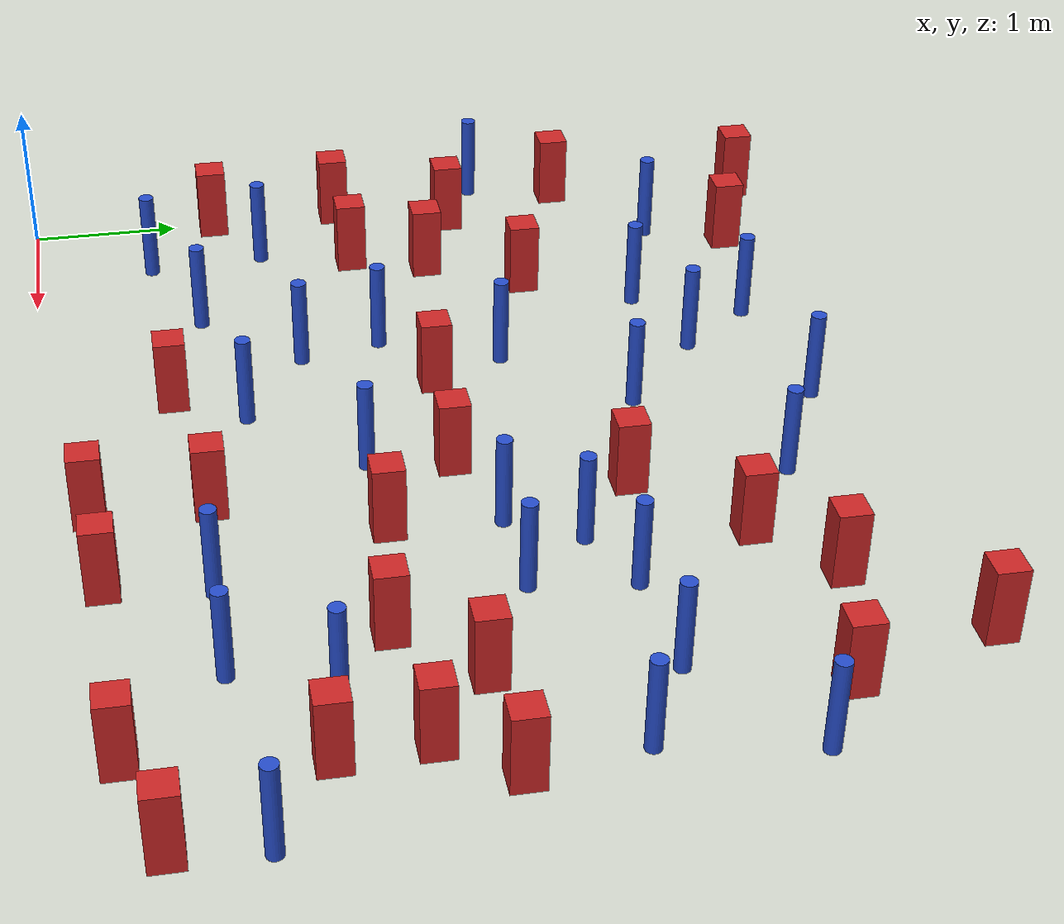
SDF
<sdf version="1.6">
 <model name="dense_17">
  <model name="pole_obstacle3">
   <static>true</static>
   <pose>6.40580370564 1.11894552427 -9.47619616065e-06 5.49618799738e-07 2.36310414071e-07 -1.55090534796e-07</pose>
   <link name="link">
    <pose>0 0 0.3 0 -0 0</pose>
    <inertial>
     <mass>1</mass>
     <inertia><ixx>0.145833</ixx><ixy>0</ixy><ixz>0</ixz><iyy>0.145833</iyy><iyz>0</iyz><izz>0.125</izz></inertia>
    </inertial>
    <collision name="collision">
     <geometry><cylinder><radius>0.05</radius><length>.6</length></cylinder></geometry>
    </collision>
    <visual name="visual">
     <geometry><cylinder><radius>0.05</radius><length>.6</length></cylinder></geometry>
     <material>
      <script><name>Gazebo/Blue</name><uri>file://media/materials/scripts/gazebo.material</uri></script>
     </material>
    </visual>
   </link>
  </model>
  <model name="square_post_obstacle6">
   <static>true</static>
   <pose>0.12175120665 5.21312354501 -6.11067671241e-07 -5.50515727128e-06 -8.79689657224e-07 2.37013304536e-05</pose>
   <link name="link">
    <pose>0 0 0.25 0 -0 0</pose>
    <inertial>
     <mass>100</mass>
     <inertia>
      <ixx>0.166667</ixx>
      <ixy>0</ixy>
      <ixz>0</ixz>
      <iyy>0.166667</iyy>
      <iyz>0</iyz>
      <izz>0.166667</izz>
     </inertia>
    </inertial>
    <collision name="collision"><geometry><box><size>.2 .2 .5</size></box></geometry></collision>
    <visual name="visual">
     <geometry><box><size>.2 .2 .5</size></box></geometry>
     <material>
      <script><name>Gazebo/Red</name><uri>file://media/materials/scripts/gazebo.material</uri></script>
     </material>
    </visual>
   </link>
  </model>
  <model name="square_post_obstacle9">
   <static>true</static>
   <pose>3.55538210605 1.01613566301 -6.11067671241e-07 -5.50515727128e-06 -8.79689657224e-07 2.37013304536e-05</pose>
   <link name="link">
    <pose>0 0 0.25 0 -0 0</pose>
    <inertial>
     <mass>100</mass>
     <inertia>
      <ixx>0.166667</ixx>
      <ixy>0</ixy>
      <ixz>0</ixz>
      <iyy>0.166667</iyy>
      <iyz>0</iyz>
      <izz>0.166667</izz>
     </inertia>
    </inertial>
    <collision name="collision"><geometry><box><size>.2 .2 .5</size></box></geometry></collision>
    <visual name="visual">
     <geometry><box><size>.2 .2 .5</size></box></geometry>
     <material>
      <script><name>Gazebo/Red</name><uri>file://media/materials/scripts/gazebo.material</uri></script>
     </material>
    </visual>
   </link>
  </model>
  <model name="square_post_obstacle15">
   <static>true</static>
   <pose>3.71951136214 3.53396822904 -6.11067671241e-07 -5.50515727128e-06 -8.79689657224e-07 2.37013304536e-05</pose>
   <link name="link">
    <pose>0 0 0.25 0 -0 0</pose>
    <inertial>
     <mass>100</mass>
     <inertia>
      <ixx>0.166667</ixx>
      <ixy>0</ixy>
      <ixz>0</ixz>
      <iyy>0.166667</iyy>
      <iyz>0</iyz>
      <izz>0.166667</izz>
     </inertia>
    </inertial>
    <collision name="collision"><geometry><box><size>.2 .2 .5</size></box></geometry></collision>
    <visual name="visual">
     <geometry><box><size>.2 .2 .5</size></box></geometry>
     <material>
      <script><name>Gazebo/Red</name><uri>file://media/materials/scripts/gazebo.material</uri></script>
     </material>
    </visual>
   </link>
  </model>
  <model name="pole_obstacle12">
   <static>true</static>
   <pose>0.657242234595 4.40116900106 -9.47619616065e-06 5.49618799737e-07 2.36310414065e-07 -1.55090534796e-07</pose>
   <link name="link">
    <pose>0 0 0.3 0 -0 0</pose>
    <inertial>
     <mass>1</mass>
     <inertia><ixx>0.145833</ixx><ixy>0</ixy><ixz>0</ixz><iyy>0.145833</iyy><iyz>0</iyz><izz>0.125</izz></inertia>
    </inertial>
    <collision name="collision">
     <geometry><cylinder><radius>0.05</radius><length>.6</length></cylinder></geometry>
    </collision>
    <visual name="visual">
     <geometry><cylinder><radius>0.05</radius><length>.6</length></cylinder></geometry>
     <material>
      <script><name>Gazebo/Blue</name><uri>file://media/materials/scripts/gazebo.material</uri></script>
     </material>
    </visual>
   </link>
  </model>
  <model name="square_post_obstacle23">
   <static>true</static>
   <pose>3.52569320102 0.297685927197 -6.11067671241e-07 -5.50515727128e-06 -8.79689657224e-07 2.37013304536e-05</pose>
   <link name="link">
    <pose>0 0 0.25 0 -0 0</pose>
    <inertial>
     <mass>100</mass>
     <inertia>
      <ixx>0.166667</ixx>
      <ixy>0</ixy>
      <ixz>0</ixz>
      <iyy>0.166667</iyy>
      <iyz>0</iyz>
      <izz>0.166667</izz>
     </inertia>
    </inertial>
    <collision name="collision"><geometry><box><size>.2 .2 .5</size></box></geometry></collision>
    <visual name="visual">
     <geometry><box><size>.2 .2 .5</size></box></geometry>
     <material>
      <script><name>Gazebo/Red</name><uri>file://media/materials/scripts/gazebo.material</uri></script>
     </material>
    </visual>
   </link>
  </model>
  <model name="square_post_obstacle26">
   <static>true</static>
   <pose>4.23867038706 0.354089430729 -6.11067671241e-07 -5.50515727128e-06 -8.79689657224e-07 2.37013304536e-05</pose>
   <link name="link">
    <pose>0 0 0.25 0 -0 0</pose>
    <inertial>
     <mass>100</mass>
     <inertia>
      <ixx>0.166667</ixx>
      <ixy>0</ixy>
      <ixz>0</ixz>
      <iyy>0.166667</iyy>
      <iyz>0</iyz>
      <izz>0.166667</izz>
     </inertia>
    </inertial>
    <collision name="collision"><geometry><box><size>.2 .2 .5</size></box></geometry></collision>
    <visual name="visual">
     <geometry><box><size>.2 .2 .5</size></box></geometry>
     <material>
      <script><name>Gazebo/Red</name><uri>file://media/materials/scripts/gazebo.material</uri></script>
     </material>
    </visual>
   </link>
  </model>
  <model name="pole_obstacle21">
   <static>true</static>
   <pose>1.88008731357 4.78758069899 -9.47619616065e-06 5.49618799737e-07 2.36310414061e-07 -1.550905348e-07</pose>
   <link name="link">
    <pose>0 0 0.3 0 -0 0</pose>
    <inertial>
     <mass>1</mass>
     <inertia><ixx>0.145833</ixx><ixy>0</ixy><ixz>0</ixz><iyy>0.145833</iyy><iyz>0</iyz><izz>0.125</izz></inertia>
    </inertial>
    <collision name="collision">
     <geometry><cylinder><radius>0.05</radius><length>.6</length></cylinder></geometry>
    </collision>
    <visual name="visual">
     <geometry><cylinder><radius>0.05</radius><length>.6</length></cylinder></geometry>
     <material>
      <script><name>Gazebo/Blue</name><uri>file://media/materials/scripts/gazebo.material</uri></script>
     </material>
    </visual>
   </link>
  </model>
  <model name="pole_obstacle22">
   <static>true</static>
   <pose>2.83495884341 3.78660274356 -9.47619616065e-06 5.49618799737e-07 2.36310414051e-07 -1.55090534807e-07</pose>
   <link name="link">
    <pose>0 0 0.3 0 -0 0</pose>
    <inertial>
     <mass>1</mass>
     <inertia><ixx>0.145833</ixx><ixy>0</ixy><ixz>0</ixz><iyy>0.145833</iyy><iyz>0</iyz><izz>0.125</izz></inertia>
    </inertial>
    <collision name="collision">
     <geometry><cylinder><radius>0.05</radius><length>.6</length></cylinder></geometry>
    </collision>
    <visual name="visual">
     <geometry><cylinder><radius>0.05</radius><length>.6</length></cylinder></geometry>
     <material>
      <script><name>Gazebo/Blue</name><uri>file://media/materials/scripts/gazebo.material</uri></script>
     </material>
    </visual>
   </link>
  </model>
  <model name="pole_obstacle30">
   <static>true</static>
   <pose>2.94315081644 4.94244840659 -9.47619616065e-06 5.49618799738e-07 2.3631041406e-07 -1.55090534801e-07</pose>
   <link name="link">
    <pose>0 0 0.3 0 -0 0</pose>
    <inertial>
     <mass>1</mass>
     <inertia><ixx>0.145833</ixx><ixy>0</ixy><ixz>0</ixz><iyy>0.145833</iyy><iyz>0</iyz><izz>0.125</izz></inertia>
    </inertial>
    <collision name="collision">
     <geometry><cylinder><radius>0.05</radius><length>.6</length></cylinder></geometry>
    </collision>
    <visual name="visual">
     <geometry><cylinder><radius>0.05</radius><length>.6</length></cylinder></geometry>
     <material>
      <script><name>Gazebo/Blue</name><uri>file://media/materials/scripts/gazebo.material</uri></script>
     </material>
    </visual>
   </link>
  </model>
  <model name="square_post_obstacle40">
   <static>true</static>
   <pose>0.735723268744 2.21795602429 -6.11067671241e-07 -5.50515727128e-06 -8.79689657224e-07 2.37013304536e-05</pose>
   <link name="link">
    <pose>0 0 0.25 0 -0 0</pose>
    <inertial>
     <mass>100</mass>
     <inertia>
      <ixx>0.166667</ixx>
      <ixy>0</ixy>
      <ixz>0</ixz>
      <iyy>0.166667</iyy>
      <iyz>0</iyz>
      <izz>0.166667</izz>
     </inertia>
    </inertial>
    <collision name="collision"><geometry><box><size>.2 .2 .5</size></box></geometry></collision>
    <visual name="visual">
     <geometry><box><size>.2 .2 .5</size></box></geometry>
     <material>
      <script><name>Gazebo/Red</name><uri>file://media/materials/scripts/gazebo.material</uri></script>
     </material>
    </visual>
   </link>
  </model>
  <model name="square_post_obstacle45">
   <static>true</static>
   <pose>5.42357465775 5.20341456652 -6.11067671241e-07 -5.50515727128e-06 -8.79689657224e-07 2.37013304536e-05</pose>
   <link name="link">
    <pose>0 0 0.25 0 -0 0</pose>
    <inertial>
     <mass>100</mass>
     <inertia>
      <ixx>0.166667</ixx>
      <ixy>0</ixy>
      <ixz>0</ixz>
      <iyy>0.166667</iyy>
      <iyz>0</iyz>
      <izz>0.166667</izz>
     </inertia>
    </inertial>
    <collision name="collision"><geometry><box><size>.2 .2 .5</size></box></geometry></collision>
    <visual name="visual">
     <geometry><box><size>.2 .2 .5</size></box></geometry>
     <material>
      <script><name>Gazebo/Red</name><uri>file://media/materials/scripts/gazebo.material</uri></script>
     </material>
    </visual>
   </link>
  </model>
  <model name="pole_obstacle55">
   <static>true</static>
   <pose>4.21173743195 3.1557542884 -9.47619616065e-06 5.49618799738e-07 2.36310414051e-07 -1.55090534805e-07</pose>
   <link name="link">
    <pose>0 0 0.3 0 -0 0</pose>
    <inertial>
     <mass>1</mass>
     <inertia><ixx>0.145833</ixx><ixy>0</ixy><ixz>0</ixz><iyy>0.145833</iyy><iyz>0</iyz><izz>0.125</izz></inertia>
    </inertial>
    <collision name="collision">
     <geometry><cylinder><radius>0.05</radius><length>.6</length></cylinder></geometry>
    </collision>
    <visual name="visual">
     <geometry><cylinder><radius>0.05</radius><length>.6</length></cylinder></geometry>
     <material>
      <script><name>Gazebo/Blue</name><uri>file://media/materials/scripts/gazebo.material</uri></script>
     </material>
    </visual>
   </link>
  </model>
  <model name="square_post_obstacle69">
   <static>true</static>
   <pose>0.268329556664 2.98880078036 -6.11067671241e-07 -5.50515727128e-06 -8.79689657224e-07 2.37013304536e-05</pose>
   <link name="link">
    <pose>0 0 0.25 0 -0 0</pose>
    <inertial>
     <mass>100</mass>
     <inertia>
      <ixx>0.166667</ixx>
      <ixy>0</ixy>
      <ixz>0</ixz>
      <iyy>0.166667</iyy>
      <iyz>0</iyz>
      <izz>0.166667</izz>
     </inertia>
    </inertial>
    <collision name="collision"><geometry><box><size>.2 .2 .5</size></box></geometry></collision>
    <visual name="visual">
     <geometry><box><size>.2 .2 .5</size></box></geometry>
     <material>
      <script><name>Gazebo/Red</name><uri>file://media/materials/scripts/gazebo.material</uri></script>
     </material>
    </visual>
   </link>
  </model>
  <model name="pole_obstacle69">
   <static>true</static>
   <pose>1.9808595066 1.73114212857 -9.47619616065e-06 5.49618799737e-07 2.36310414028e-07 -1.5509053482e-07</pose>
   <link name="link">
    <pose>0 0 0.3 0 -0 0</pose>
    <inertial>
     <mass>1</mass>
     <inertia><ixx>0.145833</ixx><ixy>0</ixy><ixz>0</ixz><iyy>0.145833</iyy><iyz>0</iyz><izz>0.125</izz></inertia>
    </inertial>
    <collision name="collision">
     <geometry><cylinder><radius>0.05</radius><length>.6</length></cylinder></geometry>
    </collision>
    <visual name="visual">
     <geometry><cylinder><radius>0.05</radius><length>.6</length></cylinder></geometry>
     <material>
      <script><name>Gazebo/Blue</name><uri>file://media/materials/scripts/gazebo.material</uri></script>
     </material>
    </visual>
   </link>
  </model>
  <model name="square_post_obstacle76">
   <static>true</static>
   <pose>3.93827418173 2.02833875753 -6.11067671241e-07 -5.50515727128e-06 -8.79689657224e-07 2.37013304536e-05</pose>
   <link name="link">
    <pose>0 0 0.25 0 -0 0</pose>
    <inertial>
     <mass>100</mass>
     <inertia>
      <ixx>0.166667</ixx>
      <ixy>0</ixy>
      <ixz>0</ixz>
      <iyy>0.166667</iyy>
      <iyz>0</iyz>
      <izz>0.166667</izz>
     </inertia>
    </inertial>
    <collision name="collision"><geometry><box><size>.2 .2 .5</size></box></geometry></collision>
    <visual name="visual">
     <geometry><box><size>.2 .2 .5</size></box></geometry>
     <material>
      <script><name>Gazebo/Red</name><uri>file://media/materials/scripts/gazebo.material</uri></script>
     </material>
    </visual>
   </link>
  </model>
  <model name="pole_obstacle72">
   <static>true</static>
   <pose>2.62070857502 1.31318737938 -9.47619616065e-06 5.49618799737e-07 2.36310414072e-07 -1.55090534793e-07</pose>
   <link name="link">
    <pose>0 0 0.3 0 -0 0</pose>
    <inertial>
     <mass>1</mass>
     <inertia><ixx>0.145833</ixx><ixy>0</ixy><ixz>0</ixz><iyy>0.145833</iyy><iyz>0</iyz><izz>0.125</izz></inertia>
    </inertial>
    <collision name="collision">
     <geometry><cylinder><radius>0.05</radius><length>.6</length></cylinder></geometry>
    </collision>
    <visual name="visual">
     <geometry><cylinder><radius>0.05</radius><length>.6</length></cylinder></geometry>
     <material>
      <script><name>Gazebo/Blue</name><uri>file://media/materials/scripts/gazebo.material</uri></script>
     </material>
    </visual>
   </link>
  </model>
  <model name="pole_obstacle74">
   <static>true</static>
   <pose>5.07295200999 0.983745637312 -9.47619616065e-06 5.49618799737e-07 2.36310414073e-07 -1.55090534792e-07</pose>
   <link name="link">
    <pose>0 0 0.3 0 -0 0</pose>
    <inertial>
     <mass>1</mass>
     <inertia><ixx>0.145833</ixx><ixy>0</ixy><ixz>0</ixz><iyy>0.145833</iyy><iyz>0</iyz><izz>0.125</izz></inertia>
    </inertial>
    <collision name="collision">
     <geometry><cylinder><radius>0.05</radius><length>.6</length></cylinder></geometry>
    </collision>
    <visual name="visual">
     <geometry><cylinder><radius>0.05</radius><length>.6</length></cylinder></geometry>
     <material>
      <script><name>Gazebo/Blue</name><uri>file://media/materials/scripts/gazebo.material</uri></script>
     </material>
    </visual>
   </link>
  </model>
  <model name="pole_obstacle77">
   <static>true</static>
   <pose>1.5898215497 4.08103817789 -9.47619616065e-06 5.49618799737e-07 2.36310414061e-07 -1.550905348e-07</pose>
   <link name="link">
    <pose>0 0 0.3 0 -0 0</pose>
    <inertial>
     <mass>1</mass>
     <inertia><ixx>0.145833</ixx><ixy>0</ixy><ixz>0</ixz><iyy>0.145833</iyy><iyz>0</iyz><izz>0.125</izz></inertia>
    </inertial>
    <collision name="collision">
     <geometry><cylinder><radius>0.05</radius><length>.6</length></cylinder></geometry>
    </collision>
    <visual name="visual">
     <geometry><cylinder><radius>0.05</radius><length>.6</length></cylinder></geometry>
     <material>
      <script><name>Gazebo/Blue</name><uri>file://media/materials/scripts/gazebo.material</uri></script>
     </material>
    </visual>
   </link>
  </model>
  <model name="pole_obstacle78">
   <static>true</static>
   <pose>0.627670581367 0.809541458154 -9.47619616065e-06 5.49618799737e-07 2.36310414058e-07 -1.55090534802e-07</pose>
   <link name="link">
    <pose>0 0 0.3 0 -0 0</pose>
    <inertial>
     <mass>1</mass>
     <inertia><ixx>0.145833</ixx><ixy>0</ixy><ixz>0</ixz><iyy>0.145833</iyy><iyz>0</iyz><izz>0.125</izz></inertia>
    </inertial>
    <collision name="collision">
     <geometry><cylinder><radius>0.05</radius><length>.6</length></cylinder></geometry>
    </collision>
    <visual name="visual">
     <geometry><cylinder><radius>0.05</radius><length>.6</length></cylinder></geometry>
     <material>
      <script><name>Gazebo/Blue</name><uri>file://media/materials/scripts/gazebo.material</uri></script>
     </material>
    </visual>
   </link>
  </model>
  <model name="pole_obstacle86">
   <static>true</static>
   <pose>5.41553206695 3.42175717961 -9.47619616065e-06 5.49618799738e-07 2.36310414051e-07 -1.55090534805e-07</pose>
   <link name="link">
    <pose>0 0 0.3 0 -0 0</pose>
    <inertial>
     <mass>1</mass>
     <inertia><ixx>0.145833</ixx><ixy>0</ixy><ixz>0</ixz><iyy>0.145833</iyy><iyz>0</iyz><izz>0.125</izz></inertia>
    </inertial>
    <collision name="collision">
     <geometry><cylinder><radius>0.05</radius><length>.6</length></cylinder></geometry>
    </collision>
    <visual name="visual">
     <geometry><cylinder><radius>0.05</radius><length>.6</length></cylinder></geometry>
     <material>
      <script><name>Gazebo/Blue</name><uri>file://media/materials/scripts/gazebo.material</uri></script>
     </material>
    </visual>
   </link>
  </model>
  <model name="square_post_obstacle82">
   <static>true</static>
   <pose>5.3345197611 2.37565667691 -6.11067671241e-07 -5.50515727128e-06 -8.79689657224e-07 2.37013304536e-05</pose>
   <link name="link">
    <pose>0 0 0.25 0 -0 0</pose>
    <inertial>
     <mass>100</mass>
     <inertia>
      <ixx>0.166667</ixx>
      <ixy>0</ixy>
      <ixz>0</ixz>
      <iyy>0.166667</iyy>
      <iyz>0</iyz>
      <izz>0.166667</izz>
     </inertia>
    </inertial>
    <collision name="collision"><geometry><box><size>.2 .2 .5</size></box></geometry></collision>
    <visual name="visual">
     <geometry><box><size>.2 .2 .5</size></box></geometry>
     <material>
      <script><name>Gazebo/Red</name><uri>file://media/materials/scripts/gazebo.material</uri></script>
     </material>
    </visual>
   </link>
  </model>
  <model name="pole_obstacle95">
   <static>true</static>
   <pose>2.18825418097 3.03562841617 -9.47619616065e-06 5.49618799737e-07 2.36310414051e-07 -1.55090534807e-07</pose>
   <link name="link">
    <pose>0 0 0.3 0 -0 0</pose>
    <inertial>
     <mass>1</mass>
     <inertia><ixx>0.145833</ixx><ixy>0</ixy><ixz>0</ixz><iyy>0.145833</iyy><iyz>0</iyz><izz>0.125</izz></inertia>
    </inertial>
    <collision name="collision">
     <geometry><cylinder><radius>0.05</radius><length>.6</length></cylinder></geometry>
    </collision>
    <visual name="visual">
     <geometry><cylinder><radius>0.05</radius><length>.6</length></cylinder></geometry>
     <material>
      <script><name>Gazebo/Blue</name><uri>file://media/materials/scripts/gazebo.material</uri></script>
     </material>
    </visual>
   </link>
  </model>
  <model name="square_post_obstacle84">
   <static>true</static>
   <pose>3.34300244757 2.51594749155 -6.11067671241e-07 -5.50515727128e-06 -8.79689657224e-07 2.37013304536e-05</pose>
   <link name="link">
    <pose>0 0 0.25 0 -0 0</pose>
    <inertial>
     <mass>100</mass>
     <inertia>
      <ixx>0.166667</ixx>
      <ixy>0</ixy>
      <ixz>0</ixz>
      <iyy>0.166667</iyy>
      <iyz>0</iyz>
      <izz>0.166667</izz>
     </inertia>
    </inertial>
    <collision name="collision"><geometry><box><size>.2 .2 .5</size></box></geometry></collision>
    <visual name="visual">
     <geometry><box><size>.2 .2 .5</size></box></geometry>
     <material>
      <script><name>Gazebo/Red</name><uri>file://media/materials/scripts/gazebo.material</uri></script>
     </material>
    </visual>
   </link>
  </model>
  <model name="pole_obstacle97">
   <static>true</static>
   <pose>4.34868274485 0.977010980778 -9.47619616065e-06 5.49618799737e-07 2.36310414073e-07 -1.55090534792e-07</pose>
   <link name="link">
    <pose>0 0 0.3 0 -0 0</pose>
    <inertial>
     <mass>1</mass>
     <inertia><ixx>0.145833</ixx><ixy>0</ixy><ixz>0</ixz><iyy>0.145833</iyy><iyz>0</iyz><izz>0.125</izz></inertia>
    </inertial>
    <collision name="collision">
     <geometry><cylinder><radius>0.05</radius><length>.6</length></cylinder></geometry>
    </collision>
    <visual name="visual">
     <geometry><cylinder><radius>0.05</radius><length>.6</length></cylinder></geometry>
     <material>
      <script><name>Gazebo/Blue</name><uri>file://media/materials/scripts/gazebo.material</uri></script>
     </material>
    </visual>
   </link>
  </model>
  <model name="square_post_obstacle94">
   <static>true</static>
   <pose>-0.0245551724282 3.83456139236 -6.11067671241e-07 -5.50515727128e-06 -8.79689657224e-07 2.37013304536e-05</pose>
   <link name="link">
    <pose>0 0 0.25 0 -0 0</pose>
    <inertial>
     <mass>100</mass>
     <inertia>
      <ixx>0.166667</ixx>
      <ixy>0</ixy>
      <ixz>0</ixz>
      <iyy>0.166667</iyy>
      <iyz>0</iyz>
      <izz>0.166667</izz>
     </inertia>
    </inertial>
    <collision name="collision"><geometry><box><size>.2 .2 .5</size></box></geometry></collision>
    <visual name="visual">
     <geometry><box><size>.2 .2 .5</size></box></geometry>
     <material>
      <script><name>Gazebo/Red</name><uri>file://media/materials/scripts/gazebo.material</uri></script>
     </material>
    </visual>
   </link>
  </model>
  <model name="pole_obstacle110">
   <static>true</static>
   <pose>0.562469756048 1.58860979636 -9.47619616065e-06 5.49618799738e-07 2.36310414061e-07 -1.55090534801e-07</pose>
   <link name="link">
    <pose>0 0 0.3 0 -0 0</pose>
    <inertial>
     <mass>1</mass>
     <inertia><ixx>0.145833</ixx><ixy>0</ixy><ixz>0</ixz><iyy>0.145833</iyy><iyz>0</iyz><izz>0.125</izz></inertia>
    </inertial>
    <collision name="collision">
     <geometry><cylinder><radius>0.05</radius><length>.6</length></cylinder></geometry>
    </collision>
    <visual name="visual">
     <geometry><cylinder><radius>0.05</radius><length>.6</length></cylinder></geometry>
     <material>
      <script><name>Gazebo/Blue</name><uri>file://media/materials/scripts/gazebo.material</uri></script>
     </material>
    </visual>
   </link>
  </model>
  <model name="pole_obstacle113">
   <static>true</static>
   <pose>2.23481605324 4.3113399485 -9.47619616065e-06 5.49618799738e-07 2.3631041406e-07 -1.55090534801e-07</pose>
   <link name="link">
    <pose>0 0 0.3 0 -0 0</pose>
    <inertial>
     <mass>1</mass>
     <inertia><ixx>0.145833</ixx><ixy>0</ixy><ixz>0</ixz><iyy>0.145833</iyy><iyz>0</iyz><izz>0.125</izz></inertia>
    </inertial>
    <collision name="collision">
     <geometry><cylinder><radius>0.05</radius><length>.6</length></cylinder></geometry>
    </collision>
    <visual name="visual">
     <geometry><cylinder><radius>0.05</radius><length>.6</length></cylinder></geometry>
     <material>
      <script><name>Gazebo/Blue</name><uri>file://media/materials/scripts/gazebo.material</uri></script>
     </material>
    </visual>
   </link>
  </model>
  <model name="pole_obstacle121">
   <static>true</static>
   <pose>6.16025132692 4.0187862755 -9.47619616065e-06 5.49618799738e-07 2.36310414038e-07 -1.55090534813e-07</pose>
   <link name="link">
    <pose>0 0 0.3 0 -0 0</pose>
    <inertial>
     <mass>1</mass>
     <inertia><ixx>0.145833</ixx><ixy>0</ixy><ixz>0</ixz><iyy>0.145833</iyy><iyz>0</iyz><izz>0.125</izz></inertia>
    </inertial>
    <collision name="collision">
     <geometry><cylinder><radius>0.05</radius><length>.6</length></cylinder></geometry>
    </collision>
    <visual name="visual">
     <geometry><cylinder><radius>0.05</radius><length>.6</length></cylinder></geometry>
     <material>
      <script><name>Gazebo/Blue</name><uri>file://media/materials/scripts/gazebo.material</uri></script>
     </material>
    </visual>
   </link>
  </model>
  <model name="pole_obstacle122">
   <static>true</static>
   <pose>5.31365486598 1.57367265441 -9.47619616065e-06 5.49618799738e-07 2.36310414071e-07 -1.55090534796e-07</pose>
   <link name="link">
    <pose>0 0 0.3 0 -0 0</pose>
    <inertial>
     <mass>1</mass>
     <inertia><ixx>0.145833</ixx><ixy>0</ixy><ixz>0</ixz><iyy>0.145833</iyy><iyz>0</iyz><izz>0.125</izz></inertia>
    </inertial>
    <collision name="collision">
     <geometry><cylinder><radius>0.05</radius><length>.6</length></cylinder></geometry>
    </collision>
    <visual name="visual">
     <geometry><cylinder><radius>0.05</radius><length>.6</length></cylinder></geometry>
     <material>
      <script><name>Gazebo/Blue</name><uri>file://media/materials/scripts/gazebo.material</uri></script>
     </material>
    </visual>
   </link>
  </model>
  <model name="pole_obstacle131">
   <static>true</static>
   <pose>3.96403284781 2.71536105877 -9.47619616065e-06 5.49618799737e-07 2.36310414035e-07 -1.55090534817e-07</pose>
   <link name="link">
    <pose>0 0 0.3 0 -0 0</pose>
    <inertial>
     <mass>1</mass>
     <inertia><ixx>0.145833</ixx><ixy>0</ixy><ixz>0</ixz><iyy>0.145833</iyy><iyz>0</iyz><izz>0.125</izz></inertia>
    </inertial>
    <collision name="collision">
     <geometry><cylinder><radius>0.05</radius><length>.6</length></cylinder></geometry>
    </collision>
    <visual name="visual">
     <geometry><cylinder><radius>0.05</radius><length>.6</length></cylinder></geometry>
     <material>
      <script><name>Gazebo/Blue</name><uri>file://media/materials/scripts/gazebo.material</uri></script>
     </material>
    </visual>
   </link>
  </model>
  <model name="square_post_obstacle121">
   <static>true</static>
   <pose>2.35432972787 0.859238940003 -6.11067671241e-07 -5.50515727128e-06 -8.79689657224e-07 2.37013304536e-05</pose>
   <link name="link">
    <pose>0 0 0.25 0 -0 0</pose>
    <inertial>
     <mass>100</mass>
     <inertia>
      <ixx>0.166667</ixx>
      <ixy>0</ixy>
      <ixz>0</ixz>
      <iyy>0.166667</iyy>
      <iyz>0</iyz>
      <izz>0.166667</izz>
     </inertia>
    </inertial>
    <collision name="collision"><geometry><box><size>.2 .2 .5</size></box></geometry></collision>
    <visual name="visual">
     <geometry><box><size>.2 .2 .5</size></box></geometry>
     <material>
      <script><name>Gazebo/Red</name><uri>file://media/materials/scripts/gazebo.material</uri></script>
     </material>
    </visual>
   </link>
  </model>
  <model name="pole_obstacle143">
   <static>true</static>
   <pose>5.99277311206 3.11308428605 -9.47619616065e-06 5.49618799738e-07 2.36310414051e-07 -1.55090534805e-07</pose>
   <link name="link">
    <pose>0 0 0.3 0 -0 0</pose>
    <inertial>
     <mass>1</mass>
     <inertia><ixx>0.145833</ixx><ixy>0</ixy><ixz>0</ixz><iyy>0.145833</iyy><iyz>0</iyz><izz>0.125</izz></inertia>
    </inertial>
    <collision name="collision">
     <geometry><cylinder><radius>0.05</radius><length>.6</length></cylinder></geometry>
    </collision>
    <visual name="visual">
     <geometry><cylinder><radius>0.05</radius><length>.6</length></cylinder></geometry>
     <material>
      <script><name>Gazebo/Blue</name><uri>file://media/materials/scripts/gazebo.material</uri></script>
     </material>
    </visual>
   </link>
  </model>
  <model name="pole_obstacle145">
   <static>true</static>
   <pose>3.73943568499 4.53620728928 -9.47619616065e-06 5.49618799738e-07 2.3631041406e-07 -1.55090534801e-07</pose>
   <link name="link">
    <pose>0 0 0.3 0 -0 0</pose>
    <inertial>
     <mass>1</mass>
     <inertia><ixx>0.145833</ixx><ixy>0</ixy><ixz>0</ixz><iyy>0.145833</iyy><iyz>0</iyz><izz>0.125</izz></inertia>
    </inertial>
    <collision name="collision">
     <geometry><cylinder><radius>0.05</radius><length>.6</length></cylinder></geometry>
    </collision>
    <visual name="visual">
     <geometry><cylinder><radius>0.05</radius><length>.6</length></cylinder></geometry>
     <material>
      <script><name>Gazebo/Blue</name><uri>file://media/materials/scripts/gazebo.material</uri></script>
     </material>
    </visual>
   </link>
  </model>
  <model name="pole_obstacle146">
   <static>true</static>
   <pose>4.59119838336 2.73745709856 -9.47619616065e-06 5.49618799738e-07 2.36310414051e-07 -1.55090534805e-07</pose>
   <link name="link">
    <pose>0 0 0.3 0 -0 0</pose>
    <inertial>
     <mass>1</mass>
     <inertia><ixx>0.145833</ixx><ixy>0</ixy><ixz>0</ixz><iyy>0.145833</iyy><iyz>0</iyz><izz>0.125</izz></inertia>
    </inertial>
    <collision name="collision">
     <geometry><cylinder><radius>0.05</radius><length>.6</length></cylinder></geometry>
    </collision>
    <visual name="visual">
     <geometry><cylinder><radius>0.05</radius><length>.6</length></cylinder></geometry>
     <material>
      <script><name>Gazebo/Blue</name><uri>file://media/materials/scripts/gazebo.material</uri></script>
     </material>
    </visual>
   </link>
  </model>
  <model name="pole_obstacle150">
   <static>true</static>
   <pose>-0.189831140969 3.2367947029 -9.47619616065e-06 5.49618799738e-07 2.36310414068e-07 -1.55090534794e-07</pose>
   <link name="link">
    <pose>0 0 0.3 0 -0 0</pose>
    <inertial>
     <mass>1</mass>
     <inertia><ixx>0.145833</ixx><ixy>0</ixy><ixz>0</ixz><iyy>0.145833</iyy><iyz>0</iyz><izz>0.125</izz></inertia>
    </inertial>
    <collision name="collision">
     <geometry><cylinder><radius>0.05</radius><length>.6</length></cylinder></geometry>
    </collision>
    <visual name="visual">
     <geometry><cylinder><radius>0.05</radius><length>.6</length></cylinder></geometry>
     <material>
      <script><name>Gazebo/Blue</name><uri>file://media/materials/scripts/gazebo.material</uri></script>
     </material>
    </visual>
   </link>
  </model>
  <model name="square_post_obstacle143">
   <static>true</static>
   <pose>1.24422720786 3.36394928118 -6.11067671241e-07 -5.50515727128e-06 -8.79689657224e-07 2.37013304536e-05</pose>
   <link name="link">
    <pose>0 0 0.25 0 -0 0</pose>
    <inertial>
     <mass>100</mass>
     <inertia>
      <ixx>0.166667</ixx>
      <ixy>0</ixy>
      <ixz>0</ixz>
      <iyy>0.166667</iyy>
      <iyz>0</iyz>
      <izz>0.166667</izz>
     </inertia>
    </inertial>
    <collision name="collision"><geometry><box><size>.2 .2 .5</size></box></geometry></collision>
    <visual name="visual">
     <geometry><box><size>.2 .2 .5</size></box></geometry>
     <material>
      <script><name>Gazebo/Red</name><uri>file://media/materials/scripts/gazebo.material</uri></script>
     </material>
    </visual>
   </link>
  </model>
  <model name="square_post_obstacle148">
   <static>true</static>
   <pose>0.0250843038498 2.17689002819 -6.11067671241e-07 -5.50515727128e-06 -8.79689657224e-07 2.37013304536e-05</pose>
   <link name="link">
    <pose>0 0 0.25 0 -0 0</pose>
    <inertial>
     <mass>100</mass>
     <inertia>
      <ixx>0.166667</ixx>
      <ixy>0</ixy>
      <ixz>0</ixz>
      <iyy>0.166667</iyy>
      <iyz>0</iyz>
      <izz>0.166667</izz>
     </inertia>
    </inertial>
    <collision name="collision"><geometry><box><size>.2 .2 .5</size></box></geometry></collision>
    <visual name="visual">
     <geometry><box><size>.2 .2 .5</size></box></geometry>
     <material>
      <script><name>Gazebo/Red</name><uri>file://media/materials/scripts/gazebo.material</uri></script>
     </material>
    </visual>
   </link>
  </model>
  <model name="pole_obstacle160">
   <static>true</static>
   <pose>3.2529697426 1.99626283243 -9.47619616065e-06 5.49618799737e-07 2.36310414056e-07 -1.55090534804e-07</pose>
   <link name="link">
    <pose>0 0 0.3 0 -0 0</pose>
    <inertial>
     <mass>1</mass>
     <inertia><ixx>0.145833</ixx><ixy>0</ixy><ixz>0</ixz><iyy>0.145833</iyy><iyz>0</iyz><izz>0.125</izz></inertia>
    </inertial>
    <collision name="collision">
     <geometry><cylinder><radius>0.05</radius><length>.6</length></cylinder></geometry>
    </collision>
    <visual name="visual">
     <geometry><cylinder><radius>0.05</radius><length>.6</length></cylinder></geometry>
     <material>
      <script><name>Gazebo/Blue</name><uri>file://media/materials/scripts/gazebo.material</uri></script>
     </material>
    </visual>
   </link>
  </model>
  <model name="square_post_obstacle157">
   <static>true</static>
   <pose>4.79609090478 4.53364795757 -6.11067671241e-07 -5.50515727128e-06 -8.79689657224e-07 2.37013304536e-05</pose>
   <link name="link">
    <pose>0 0 0.25 0 -0 0</pose>
    <inertial>
     <mass>100</mass>
     <inertia>
      <ixx>0.166667</ixx>
      <ixy>0</ixy>
      <ixz>0</ixz>
      <iyy>0.166667</iyy>
      <iyz>0</iyz>
      <izz>0.166667</izz>
     </inertia>
    </inertial>
    <collision name="collision"><geometry><box><size>.2 .2 .5</size></box></geometry></collision>
    <visual name="visual">
     <geometry><box><size>.2 .2 .5</size></box></geometry>
     <material>
      <script><name>Gazebo/Red</name><uri>file://media/materials/scripts/gazebo.material</uri></script>
     </material>
    </visual>
   </link>
  </model>
  <model name="square_post_obstacle163">
   <static>true</static>
   <pose>5.83250815881 1.4746276174 -6.11067671241e-07 -5.50515727128e-06 -8.79689657224e-07 2.37013304536e-05</pose>
   <link name="link">
    <pose>0 0 0.25 0 -0 0</pose>
    <inertial>
     <mass>100</mass>
     <inertia>
      <ixx>0.166667</ixx>
      <ixy>0</ixy>
      <ixz>0</ixz>
      <iyy>0.166667</iyy>
      <iyz>0</iyz>
      <izz>0.166667</izz>
     </inertia>
    </inertial>
    <collision name="collision"><geometry><box><size>.2 .2 .5</size></box></geometry></collision>
    <visual name="visual">
     <geometry><box><size>.2 .2 .5</size></box></geometry>
     <material>
      <script><name>Gazebo/Red</name><uri>file://media/materials/scripts/gazebo.material</uri></script>
     </material>
    </visual>
   </link>
  </model>
  <model name="pole_obstacle176">
   <static>true</static>
   <pose>1.40275080122 1.10718735346 -9.47619616065e-06 5.49618799737e-07 2.36310414065e-07 -1.55090534798e-07</pose>
   <link name="link">
    <pose>0 0 0.3 0 -0 0</pose>
    <inertial>
     <mass>1</mass>
     <inertia><ixx>0.145833</ixx><ixy>0</ixy><ixz>0</ixz><iyy>0.145833</iyy><iyz>0</iyz><izz>0.125</izz></inertia>
    </inertial>
    <collision name="collision">
     <geometry><cylinder><radius>0.05</radius><length>.6</length></cylinder></geometry>
    </collision>
    <visual name="visual">
     <geometry><cylinder><radius>0.05</radius><length>.6</length></cylinder></geometry>
     <material>
      <script><name>Gazebo/Blue</name><uri>file://media/materials/scripts/gazebo.material</uri></script>
     </material>
    </visual>
   </link>
  </model>
  <model name="pole_obstacle177">
   <static>true</static>
   <pose>4.67641214926 3.37076409259 -9.47619616065e-06 5.49618799738e-07 2.36310414051e-07 -1.55090534805e-07</pose>
   <link name="link">
    <pose>0 0 0.3 0 -0 0</pose>
    <inertial>
     <mass>1</mass>
     <inertia><ixx>0.145833</ixx><ixy>0</ixy><ixz>0</ixz><iyy>0.145833</iyy><iyz>0</iyz><izz>0.125</izz></inertia>
    </inertial>
    <collision name="collision">
     <geometry><cylinder><radius>0.05</radius><length>.6</length></cylinder></geometry>
    </collision>
    <visual name="visual">
     <geometry><cylinder><radius>0.05</radius><length>.6</length></cylinder></geometry>
     <material>
      <script><name>Gazebo/Blue</name><uri>file://media/materials/scripts/gazebo.material</uri></script>
     </material>
    </visual>
   </link>
  </model>
  <model name="pole_obstacle179">
   <static>true</static>
   <pose>1.8567749019 2.26457654373 -9.47619616065e-06 5.49618799737e-07 2.36310414062e-07 -1.55090534798e-07</pose>
   <link name="link">
    <pose>0 0 0.3 0 -0 0</pose>
    <inertial>
     <mass>1</mass>
     <inertia><ixx>0.145833</ixx><ixy>0</ixy><ixz>0</ixz><iyy>0.145833</iyy><iyz>0</iyz><izz>0.125</izz></inertia>
    </inertial>
    <collision name="collision">
     <geometry><cylinder><radius>0.05</radius><length>.6</length></cylinder></geometry>
    </collision>
    <visual name="visual">
     <geometry><cylinder><radius>0.05</radius><length>.6</length></cylinder></geometry>
     <material>
      <script><name>Gazebo/Blue</name><uri>file://media/materials/scripts/gazebo.material</uri></script>
     </material>
    </visual>
   </link>
  </model>
  <model name="square_post_obstacle171">
   <static>true</static>
   <pose>5.67195359651 0.39494755215 -6.11067671241e-07 -5.50515727128e-06 -8.79689657224e-07 2.37013304536e-05</pose>
   <link name="link">
    <pose>0 0 0.25 0 -0 0</pose>
    <inertial>
     <mass>100</mass>
     <inertia>
      <ixx>0.166667</ixx>
      <ixy>0</ixy>
      <ixz>0</ixz>
      <iyy>0.166667</iyy>
      <iyz>0</iyz>
      <izz>0.166667</izz>
     </inertia>
    </inertial>
    <collision name="collision"><geometry><box><size>.2 .2 .5</size></box></geometry></collision>
    <visual name="visual">
     <geometry><box><size>.2 .2 .5</size></box></geometry>
     <material>
      <script><name>Gazebo/Red</name><uri>file://media/materials/scripts/gazebo.material</uri></script>
     </material>
    </visual>
   </link>
  </model>
  <model name="square_post_obstacle174">
   <static>true</static>
   <pose>4.32296348351 4.13064296187 -6.11067671241e-07 -5.50515727128e-06 -8.79689657224e-07 2.37013304536e-05</pose>
   <link name="link">
    <pose>0 0 0.25 0 -0 0</pose>
    <inertial>
     <mass>100</mass>
     <inertia>
      <ixx>0.166667</ixx>
      <ixy>0</ixy>
      <ixz>0</ixz>
      <iyy>0.166667</iyy>
      <iyz>0</iyz>
      <izz>0.166667</izz>
     </inertia>
    </inertial>
    <collision name="collision"><geometry><box><size>.2 .2 .5</size></box></geometry></collision>
    <visual name="visual">
     <geometry><box><size>.2 .2 .5</size></box></geometry>
     <material>
      <script><name>Gazebo/Red</name><uri>file://media/materials/scripts/gazebo.material</uri></script>
     </material>
    </visual>
   </link>
  </model>
  <model name="square_post_obstacle175">
   <static>true</static>
   <pose>4.8938167536 1.90419557198 -6.11067671241e-07 -5.50515727128e-06 -8.79689657224e-07 2.37013304536e-05</pose>
   <link name="link">
    <pose>0 0 0.25 0 -0 0</pose>
    <inertial>
     <mass>100</mass>
     <inertia>
      <ixx>0.166667</ixx>
      <ixy>0</ixy>
      <ixz>0</ixz>
      <iyy>0.166667</iyy>
      <iyz>0</iyz>
      <izz>0.166667</izz>
     </inertia>
    </inertial>
    <collision name="collision"><geometry><box><size>.2 .2 .5</size></box></geometry></collision>
    <visual name="visual">
     <geometry><box><size>.2 .2 .5</size></box></geometry>
     <material>
      <script><name>Gazebo/Red</name><uri>file://media/materials/scripts/gazebo.material</uri></script>
     </material>
    </visual>
   </link>
  </model>
  <model name="square_post_obstacle184">
   <static>true</static>
   <pose>5.71168871673 4.29500230123 -6.11067671241e-07 -5.50515727128e-06 -8.79689657224e-07 2.37013304536e-05</pose>
   <link name="link">
    <pose>0 0 0.25 0 -0 0</pose>
    <inertial>
     <mass>100</mass>
     <inertia>
      <ixx>0.166667</ixx>
      <ixy>0</ixy>
      <ixz>0</ixz>
      <iyy>0.166667</iyy>
      <iyz>0</iyz>
      <izz>0.166667</izz>
     </inertia>
    </inertial>
    <collision name="collision"><geometry><box><size>.2 .2 .5</size></box></geometry></collision>
    <visual name="visual">
     <geometry><box><size>.2 .2 .5</size></box></geometry>
     <material>
      <script><name>Gazebo/Red</name><uri>file://media/materials/scripts/gazebo.material</uri></script>
     </material>
    </visual>
   </link>
  </model>
  <model name="square_post_obstacle185">
   <static>true</static>
   <pose>2.4074792309 2.556051401 -6.11067671241e-07 -5.50515727128e-06 -8.79689657224e-07 2.37013304536e-05</pose>
   <link name="link">
    <pose>0 0 0.25 0 -0 0</pose>
    <inertial>
     <mass>100</mass>
     <inertia>
      <ixx>0.166667</ixx>
      <ixy>0</ixy>
      <ixz>0</ixz>
      <iyy>0.166667</iyy>
      <iyz>0</iyz>
      <izz>0.166667</izz>
     </inertia>
    </inertial>
    <collision name="collision"><geometry><box><size>.2 .2 .5</size></box></geometry></collision>
    <visual name="visual">
     <geometry><box><size>.2 .2 .5</size></box></geometry>
     <material>
      <script><name>Gazebo/Red</name><uri>file://media/materials/scripts/gazebo.material</uri></script>
     </material>
    </visual>
   </link>
  </model>
  <model name="square_post_obstacle190">
   <static>true</static>
   <pose>5.80818743185 2.00981176945 -6.11067671241e-07 -5.50515727128e-06 -8.79689657224e-07 2.37013304536e-05</pose>
   <link name="link">
    <pose>0 0 0.25 0 -0 0</pose>
    <inertial>
     <mass>100</mass>
     <inertia>
      <ixx>0.166667</ixx>
      <ixy>0</ixy>
      <ixz>0</ixz>
      <iyy>0.166667</iyy>
      <iyz>0</iyz>
      <izz>0.166667</izz>
     </inertia>
    </inertial>
    <collision name="collision"><geometry><box><size>.2 .2 .5</size></box></geometry></collision>
    <visual name="visual">
     <geometry><box><size>.2 .2 .5</size></box></geometry>
     <material>
      <script><name>Gazebo/Red</name><uri>file://media/materials/scripts/gazebo.material</uri></script>
     </material>
    </visual>
   </link>
  </model>
  <model name="square_post_obstacle197">
   <static>true</static>
   <pose>0.871903877292 4.93263803057 -6.11067671241e-07 -5.50515727128e-06 -8.79689657224e-07 2.37013304536e-05</pose>
   <link name="link">
    <pose>0 0 0.25 0 -0 0</pose>
    <inertial>
     <mass>100</mass>
     <inertia>
      <ixx>0.166667</ixx>
      <ixy>0</ixy>
      <ixz>0</ixz>
      <iyy>0.166667</iyy>
      <iyz>0</iyz>
      <izz>0.166667</izz>
     </inertia>
    </inertial>
    <collision name="collision"><geometry><box><size>.2 .2 .5</size></box></geometry></collision>
    <visual name="visual">
     <geometry><box><size>.2 .2 .5</size></box></geometry>
     <material>
      <script><name>Gazebo/Red</name><uri>file://media/materials/scripts/gazebo.material</uri></script>
     </material>
    </visual>
   </link>
  </model>
  <model name="square_post_obstacle205">
   <static>true</static>
   <pose>6.34343150543 0.596612627994 -6.11067671241e-07 -5.50515727128e-06 -8.79689657224e-07 2.37013304536e-05</pose>
   <link name="link">
    <pose>0 0 0.25 0 -0 0</pose>
    <inertial>
     <mass>100</mass>
     <inertia>
      <ixx>0.166667</ixx>
      <ixy>0</ixy>
      <ixz>0</ixz>
      <iyy>0.166667</iyy>
      <iyz>0</iyz>
      <izz>0.166667</izz>
     </inertia>
    </inertial>
    <collision name="collision"><geometry><box><size>.2 .2 .5</size></box></geometry></collision>
    <visual name="visual">
     <geometry><box><size>.2 .2 .5</size></box></geometry>
     <material>
      <script><name>Gazebo/Red</name><uri>file://media/materials/scripts/gazebo.material</uri></script>
     </material>
    </visual>
   </link>
  </model>
  <model name="square_post_obstacle241">
   <static>true</static>
   <pose>0.0673669502031 1.28512997688 -6.11067671241e-07 -5.50515727128e-06 -8.79689657224e-07 2.37013304536e-05</pose>
   <link name="link">
    <pose>0 0 0.25 0 -0 0</pose>
    <inertial>
     <mass>100</mass>
     <inertia>
      <ixx>0.166667</ixx>
      <ixy>0</ixy>
      <ixz>0</ixz>
      <iyy>0.166667</iyy>
      <iyz>0</iyz>
      <izz>0.166667</izz>
     </inertia>
    </inertial>
    <collision name="collision"><geometry><box><size>.2 .2 .5</size></box></geometry></collision>
    <visual name="visual">
     <geometry><box><size>.2 .2 .5</size></box></geometry>
     <material>
      <script><name>Gazebo/Red</name><uri>file://media/materials/scripts/gazebo.material</uri></script>
     </material>
    </visual>
   </link>
  </model>
  <model name="square_post_obstacle242">
   <static>true</static>
   <pose>6.1070899502 2.41682997688 -6.11067671241e-07 -5.50515727128e-06 -8.79689657224e-07 2.37013304536e-05</pose>
   <link name="link">
    <pose>0 0 0.25 0 -0 0</pose>
    <inertial>
     <mass>100</mass>
     <inertia>
      <ixx>0.166667</ixx>
      <ixy>0</ixy>
      <ixz>0</ixz>
      <iyy>0.166667</iyy>
      <iyz>0</iyz>
      <izz>0.166667</izz>
     </inertia>
    </inertial>
    <collision name="collision"><geometry><box><size>.2 .2 .5</size></box></geometry></collision>
    <visual name="visual">
     <geometry><box><size>.2 .2 .5</size></box></geometry>
     <material>
      <script><name>Gazebo/Red</name><uri>file://media/materials/scripts/gazebo.material</uri></script>
     </material>
    </visual>
   </link>
  </model>
  <model name="square_post_obstacle246">
   <static>true</static>
   <pose>0.907884950203 2.73140997688 -6.11067671241e-07 -5.50515727128e-06 -8.79689657224e-07 2.37013304536e-05</pose>
   <link name="link">
    <pose>0 0 0.25 0 -0 0</pose>
    <inertial>
     <mass>100</mass>
     <inertia>
      <ixx>0.166667</ixx>
      <ixy>0</ixy>
      <ixz>0</ixz>
      <iyy>0.166667</iyy>
      <iyz>0</iyz>
      <izz>0.166667</izz>
     </inertia>
    </inertial>
    <collision name="collision"><geometry><box><size>.2 .2 .5</size></box></geometry></collision>
    <visual name="visual">
     <geometry><box><size>.2 .2 .5</size></box></geometry>
     <material>
      <script><name>Gazebo/Red</name><uri>file://media/materials/scripts/gazebo.material</uri></script>
     </material>
    </visual>
   </link>
  </model>
 </model>
</sdf>
